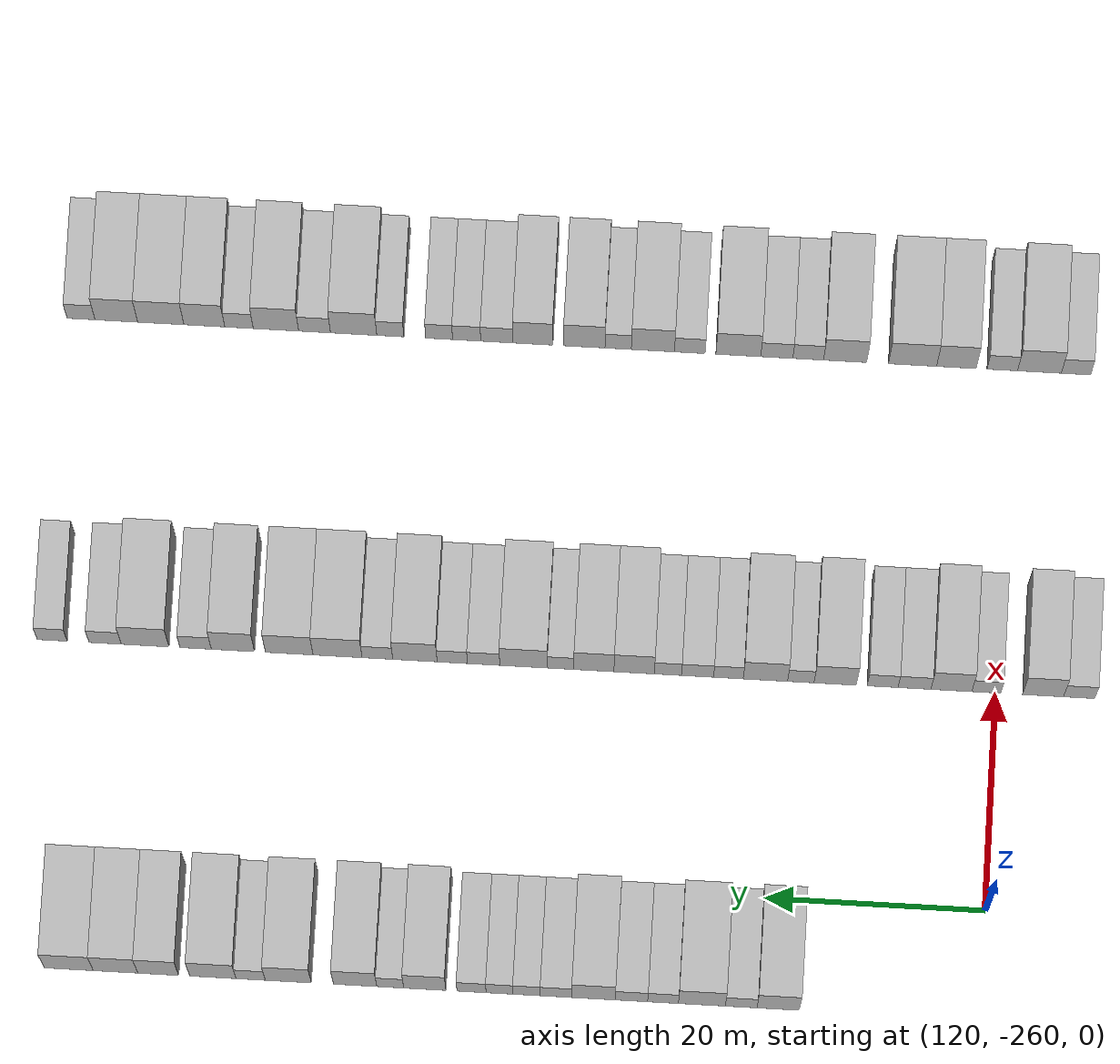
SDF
<sdf version="1.6">
 <world name="default">
  <model name="building_739">
   <static>1</static>
   <pose>115.0000 -241.7540 0 0.000000 0.000000 0.000000</pose>
   <link name="link">
    <pose>0 0 4.50 0 0 0</pose>
    <collision name="collision"><geometry><box><size>10.0000 3.8278 9.0000</size></box></geometry></collision>
    <visual name="visual">
     <cast_shadows>0</cast_shadows>
     <geometry><box><size>10.0000 3.8278 9.0000</size></box></geometry>
     <material>
      <script>
       <uri>model://HANNAS_wall/materials/scripts</uri>
       <uri>model://HANNAS_wall/materials/textures</uri>
       <name>vrc/HANNAS_wall</name>
      </script>
     </material>
    </visual>
   </link>
  </model>
  <model name="building_740">
   <static>1</static>
   <pose>115.0000 -238.4120 0 0.000000 0.000000 0.000000</pose>
   <link name="link">
    <pose>0 0 3.00 0 0 0</pose>
    <collision name="collision"><geometry><box><size>10.0000 2.8562 6.0000</size></box></geometry></collision>
    <visual name="visual">
     <cast_shadows>0</cast_shadows>
     <geometry><box><size>10.0000 2.8562 6.0000</size></box></geometry>
     <material>
      <script>
       <uri>model://HANNAS_wall/materials/scripts</uri>
       <uri>model://HANNAS_wall/materials/textures</uri>
       <name>vrc/HANNAS_wall</name>
      </script>
     </material>
    </visual>
   </link>
  </model>
  <model name="building_741">
   <static>1</static>
   <pose>115.0000 -234.8607 0 0.000000 0.000000 0.000000</pose>
   <link name="link">
    <pose>0 0 4.50 0 0 0</pose>
    <collision name="collision"><geometry><box><size>10.0000 4.2464 9.0000</size></box></geometry></collision>
    <visual name="visual">
     <cast_shadows>0</cast_shadows>
     <geometry><box><size>10.0000 4.2464 9.0000</size></box></geometry>
     <material>
      <script>
       <uri>model://HANNAS_wall/materials/scripts</uri>
       <uri>model://HANNAS_wall/materials/textures</uri>
       <name>vrc/HANNAS_wall</name>
      </script>
     </material>
    </visual>
   </link>
  </model>
  <model name="building_742">
   <static>1</static>
   <pose>115.0000 -231.3489 0 0.000000 0.000000 0.000000</pose>
   <link name="link">
    <pose>0 0 3.00 0 0 0</pose>
    <collision name="collision"><geometry><box><size>10.0000 2.7771 6.0000</size></box></geometry></collision>
    <visual name="visual">
     <cast_shadows>0</cast_shadows>
     <geometry><box><size>10.0000 2.7771 6.0000</size></box></geometry>
     <material>
      <script>
       <uri>model://HANNAS_wall/materials/scripts</uri>
       <uri>model://HANNAS_wall/materials/textures</uri>
       <name>vrc/HANNAS_wall</name>
      </script>
     </material>
    </visual>
   </link>
  </model>
  <model name="building_743">
   <static>1</static>
   <pose>115.0000 -228.4945 0 0.000000 0.000000 0.000000</pose>
   <link name="link">
    <pose>0 0 3.00 0 0 0</pose>
    <collision name="collision"><geometry><box><size>10.0000 2.9319 6.0000</size></box></geometry></collision>
    <visual name="visual">
     <cast_shadows>0</cast_shadows>
     <geometry><box><size>10.0000 2.9319 6.0000</size></box></geometry>
     <material>
      <script>
       <uri>model://HANNAS_wall/materials/scripts</uri>
       <uri>model://HANNAS_wall/materials/textures</uri>
       <name>vrc/HANNAS_wall</name>
      </script>
     </material>
    </visual>
   </link>
  </model>
  <model name="building_744">
   <static>1</static>
   <pose>115.0000 -225.0639 0 0.000000 0.000000 0.000000</pose>
   <link name="link">
    <pose>0 0 4.50 0 0 0</pose>
    <collision name="collision"><geometry><box><size>10.0000 3.9292 9.0000</size></box></geometry></collision>
    <visual name="visual">
     <cast_shadows>0</cast_shadows>
     <geometry><box><size>10.0000 3.9292 9.0000</size></box></geometry>
     <material>
      <script>
       <uri>model://HANNAS_wall/materials/scripts</uri>
       <uri>model://HANNAS_wall/materials/textures</uri>
       <name>vrc/HANNAS_wall</name>
      </script>
     </material>
    </visual>
   </link>
  </model>
  <model name="building_745">
   <static>1</static>
   <pose>115.0000 -221.6738 0 0.000000 0.000000 0.000000</pose>
   <link name="link">
    <pose>0 0 3.00 0 0 0</pose>
    <collision name="collision"><geometry><box><size>10.0000 2.8510 6.0000</size></box></geometry></collision>
    <visual name="visual">
     <cast_shadows>0</cast_shadows>
     <geometry><box><size>10.0000 2.8510 6.0000</size></box></geometry>
     <material>
      <script>
       <uri>model://HANNAS_wall/materials/scripts</uri>
       <uri>model://HANNAS_wall/materials/textures</uri>
       <name>vrc/HANNAS_wall</name>
      </script>
     </material>
    </visual>
   </link>
  </model>
  <model name="building_746">
   <static>1</static>
   <pose>115.0000 -219.0164 0 0.000000 0.000000 0.000000</pose>
   <link name="link">
    <pose>0 0 3.00 0 0 0</pose>
    <collision name="collision"><geometry><box><size>10.0000 2.4638 6.0000</size></box></geometry></collision>
    <visual name="visual">
     <cast_shadows>0</cast_shadows>
     <geometry><box><size>10.0000 2.4638 6.0000</size></box></geometry>
     <material>
      <script>
       <uri>model://HANNAS_wall/materials/scripts</uri>
       <uri>model://HANNAS_wall/materials/textures</uri>
       <name>vrc/HANNAS_wall</name>
      </script>
     </material>
    </visual>
   </link>
  </model>
  <model name="building_747">
   <static>1</static>
   <pose>115.0000 -216.5693 0 0.000000 0.000000 0.000000</pose>
   <link name="link">
    <pose>0 0 3.00 0 0 0</pose>
    <collision name="collision"><geometry><box><size>10.0000 2.4302 6.0000</size></box></geometry></collision>
    <visual name="visual">
     <cast_shadows>0</cast_shadows>
     <geometry><box><size>10.0000 2.4302 6.0000</size></box></geometry>
     <material>
      <script>
       <uri>model://HANNAS_wall/materials/scripts</uri>
       <uri>model://HANNAS_wall/materials/textures</uri>
       <name>vrc/HANNAS_wall</name>
      </script>
     </material>
    </visual>
   </link>
  </model>
  <model name="building_748">
   <static>1</static>
   <pose>115.0000 -214.0359 0 0.000000 0.000000 0.000000</pose>
   <link name="link">
    <pose>0 0 3.00 0 0 0</pose>
    <collision name="collision"><geometry><box><size>10.0000 2.6367 6.0000</size></box></geometry></collision>
    <visual name="visual">
     <cast_shadows>0</cast_shadows>
     <geometry><box><size>10.0000 2.6367 6.0000</size></box></geometry>
     <material>
      <script>
       <uri>model://HANNAS_wall/materials/scripts</uri>
       <uri>model://HANNAS_wall/materials/textures</uri>
       <name>vrc/HANNAS_wall</name>
      </script>
     </material>
    </visual>
   </link>
  </model>
  <model name="building_749">
   <static>1</static>
   <pose>115.0000 -209.8105 0 0.000000 0.000000 0.000000</pose>
   <link name="link">
    <pose>0 0 4.50 0 0 0</pose>
    <collision name="collision"><geometry><box><size>10.0000 3.8141 9.0000</size></box></geometry></collision>
    <visual name="visual">
     <cast_shadows>0</cast_shadows>
     <geometry><box><size>10.0000 3.8141 9.0000</size></box></geometry>
     <material>
      <script>
       <uri>model://HANNAS_wall/materials/scripts</uri>
       <uri>model://HANNAS_wall/materials/textures</uri>
       <name>vrc/HANNAS_wall</name>
      </script>
     </material>
    </visual>
   </link>
  </model>
  <model name="building_750">
   <static>1</static>
   <pose>115.0000 -206.6864 0 0.000000 0.000000 0.000000</pose>
   <link name="link">
    <pose>0 0 3.00 0 0 0</pose>
    <collision name="collision"><geometry><box><size>10.0000 2.4340 6.0000</size></box></geometry></collision>
    <visual name="visual">
     <cast_shadows>0</cast_shadows>
     <geometry><box><size>10.0000 2.4340 6.0000</size></box></geometry>
     <material>
      <script>
       <uri>model://HANNAS_wall/materials/scripts</uri>
       <uri>model://HANNAS_wall/materials/textures</uri>
       <name>vrc/HANNAS_wall</name>
      </script>
     </material>
    </visual>
   </link>
  </model>
  <model name="building_751">
   <static>1</static>
   <pose>115.0000 -203.5033 0 0.000000 0.000000 0.000000</pose>
   <link name="link">
    <pose>0 0 4.50 0 0 0</pose>
    <collision name="collision"><geometry><box><size>10.0000 3.9322 9.0000</size></box></geometry></collision>
    <visual name="visual">
     <cast_shadows>0</cast_shadows>
     <geometry><box><size>10.0000 3.9322 9.0000</size></box></geometry>
     <material>
      <script>
       <uri>model://HANNAS_wall/materials/scripts</uri>
       <uri>model://HANNAS_wall/materials/textures</uri>
       <name>vrc/HANNAS_wall</name>
      </script>
     </material>
    </visual>
   </link>
  </model>
  <model name="building_752">
   <static>1</static>
   <pose>115.0000 -197.4525 0 0.000000 0.000000 0.000000</pose>
   <link name="link">
    <pose>0 0 4.50 0 0 0</pose>
    <collision name="collision"><geometry><box><size>10.0000 4.1695 9.0000</size></box></geometry></collision>
    <visual name="visual">
     <cast_shadows>0</cast_shadows>
     <geometry><box><size>10.0000 4.1695 9.0000</size></box></geometry>
     <material>
      <script>
       <uri>model://HANNAS_wall/materials/scripts</uri>
       <uri>model://HANNAS_wall/materials/textures</uri>
       <name>vrc/HANNAS_wall</name>
      </script>
     </material>
    </visual>
   </link>
  </model>
  <model name="building_753">
   <static>1</static>
   <pose>115.0000 -194.0520 0 0.000000 0.000000 0.000000</pose>
   <link name="link">
    <pose>0 0 3.00 0 0 0</pose>
    <collision name="collision"><geometry><box><size>10.0000 2.6315 6.0000</size></box></geometry></collision>
    <visual name="visual">
     <cast_shadows>0</cast_shadows>
     <geometry><box><size>10.0000 2.6315 6.0000</size></box></geometry>
     <material>
      <script>
       <uri>model://HANNAS_wall/materials/scripts</uri>
       <uri>model://HANNAS_wall/materials/textures</uri>
       <name>vrc/HANNAS_wall</name>
      </script>
     </material>
    </visual>
   </link>
  </model>
  <model name="building_754">
   <static>1</static>
   <pose>115.0000 -190.6372 0 0.000000 0.000000 0.000000</pose>
   <link name="link">
    <pose>0 0 4.50 0 0 0</pose>
    <collision name="collision"><geometry><box><size>10.0000 4.1980 9.0000</size></box></geometry></collision>
    <visual name="visual">
     <cast_shadows>0</cast_shadows>
     <geometry><box><size>10.0000 4.1980 9.0000</size></box></geometry>
     <material>
      <script>
       <uri>model://HANNAS_wall/materials/scripts</uri>
       <uri>model://HANNAS_wall/materials/textures</uri>
       <name>vrc/HANNAS_wall</name>
      </script>
     </material>
    </visual>
   </link>
  </model>
  <model name="building_755">
   <static>1</static>
   <pose>115.0000 -185.6917 0 0.000000 0.000000 0.000000</pose>
   <link name="link">
    <pose>0 0 4.50 0 0 0</pose>
    <collision name="collision"><geometry><box><size>10.0000 3.6931 9.0000</size></box></geometry></collision>
    <visual name="visual">
     <cast_shadows>0</cast_shadows>
     <geometry><box><size>10.0000 3.6931 9.0000</size></box></geometry>
     <material>
      <script>
       <uri>model://HANNAS_wall/materials/scripts</uri>
       <uri>model://HANNAS_wall/materials/textures</uri>
       <name>vrc/HANNAS_wall</name>
      </script>
     </material>
    </visual>
   </link>
  </model>
  <model name="building_756">
   <static>1</static>
   <pose>115.0000 -181.8208 0 0.000000 0.000000 0.000000</pose>
   <link name="link">
    <pose>0 0 4.50 0 0 0</pose>
    <collision name="collision"><geometry><box><size>10.0000 4.0487 9.0000</size></box></geometry></collision>
    <visual name="visual">
     <cast_shadows>0</cast_shadows>
     <geometry><box><size>10.0000 4.0487 9.0000</size></box></geometry>
     <material>
      <script>
       <uri>model://HANNAS_wall/materials/scripts</uri>
       <uri>model://HANNAS_wall/materials/textures</uri>
       <name>vrc/HANNAS_wall</name>
      </script>
     </material>
    </visual>
   </link>
  </model>
  <model name="building_757">
   <static>1</static>
   <pose>115.0000 -177.5855 0 0.000000 0.000000 0.000000</pose>
   <link name="link">
    <pose>0 0 4.50 0 0 0</pose>
    <collision name="collision"><geometry><box><size>10.0000 4.4221 9.0000</size></box></geometry></collision>
    <visual name="visual">
     <cast_shadows>0</cast_shadows>
     <geometry><box><size>10.0000 4.4221 9.0000</size></box></geometry>
     <material>
      <script>
       <uri>model://HANNAS_wall/materials/scripts</uri>
       <uri>model://HANNAS_wall/materials/textures</uri>
       <name>vrc/HANNAS_wall</name>
      </script>
     </material>
    </visual>
   </link>
  </model>
  <model name="building_961">
   <static>1</static>
   <pose>145.0000 -267.6204 0 0.000000 0.000000 0.000000</pose>
   <link name="link">
    <pose>0 0 3.00 0 0 0</pose>
    <collision name="collision"><geometry><box><size>10.0000 2.8431 6.0000</size></box></geometry></collision>
    <visual name="visual">
     <cast_shadows>0</cast_shadows>
     <geometry><box><size>10.0000 2.8431 6.0000</size></box></geometry>
     <material>
      <script>
       <uri>model://HANNAS_wall/materials/scripts</uri>
       <uri>model://HANNAS_wall/materials/textures</uri>
       <name>vrc/HANNAS_wall</name>
      </script>
     </material>
    </visual>
   </link>
  </model>
  <model name="building_962">
   <static>1</static>
   <pose>145.0000 -264.3363 0 0.000000 0.000000 0.000000</pose>
   <link name="link">
    <pose>0 0 4.50 0 0 0</pose>
    <collision name="collision"><geometry><box><size>10.0000 3.7251 9.0000</size></box></geometry></collision>
    <visual name="visual">
     <cast_shadows>0</cast_shadows>
     <geometry><box><size>10.0000 3.7251 9.0000</size></box></geometry>
     <material>
      <script>
       <uri>model://HANNAS_wall/materials/scripts</uri>
       <uri>model://HANNAS_wall/materials/textures</uri>
       <name>vrc/HANNAS_wall</name>
      </script>
     </material>
    </visual>
   </link>
  </model>
  <model name="building_963">
   <static>1</static>
   <pose>145.0000 -259.1594 0 0.000000 0.000000 0.000000</pose>
   <link name="link">
    <pose>0 0 3.00 0 0 0</pose>
    <collision name="collision"><geometry><box><size>10.0000 2.6287 6.0000</size></box></geometry></collision>
    <visual name="visual">
     <cast_shadows>0</cast_shadows>
     <geometry><box><size>10.0000 2.6287 6.0000</size></box></geometry>
     <material>
      <script>
       <uri>model://HANNAS_wall/materials/scripts</uri>
       <uri>model://HANNAS_wall/materials/textures</uri>
       <name>vrc/HANNAS_wall</name>
      </script>
     </material>
    </visual>
   </link>
  </model>
  <model name="building_964">
   <static>1</static>
   <pose>145.0000 -255.9817 0 0.000000 0.000000 0.000000</pose>
   <link name="link">
    <pose>0 0 4.50 0 0 0</pose>
    <collision name="collision"><geometry><box><size>10.0000 3.7265 9.0000</size></box></geometry></collision>
    <visual name="visual">
     <cast_shadows>0</cast_shadows>
     <geometry><box><size>10.0000 3.7265 9.0000</size></box></geometry>
     <material>
      <script>
       <uri>model://HANNAS_wall/materials/scripts</uri>
       <uri>model://HANNAS_wall/materials/textures</uri>
       <name>vrc/HANNAS_wall</name>
      </script>
     </material>
    </visual>
   </link>
  </model>
  <model name="building_965">
   <static>1</static>
   <pose>145.0000 -252.6247 0 0.000000 0.000000 0.000000</pose>
   <link name="link">
    <pose>0 0 3.00 0 0 0</pose>
    <collision name="collision"><geometry><box><size>10.0000 2.9876 6.0000</size></box></geometry></collision>
    <visual name="visual">
     <cast_shadows>0</cast_shadows>
     <geometry><box><size>10.0000 2.9876 6.0000</size></box></geometry>
     <material>
      <script>
       <uri>model://HANNAS_wall/materials/scripts</uri>
       <uri>model://HANNAS_wall/materials/textures</uri>
       <name>vrc/HANNAS_wall</name>
      </script>
     </material>
    </visual>
   </link>
  </model>
  <model name="building_966">
   <static>1</static>
   <pose>145.0000 -249.7247 0 0.000000 0.000000 0.000000</pose>
   <link name="link">
    <pose>0 0 3.00 0 0 0</pose>
    <collision name="collision"><geometry><box><size>10.0000 2.8123 6.0000</size></box></geometry></collision>
    <visual name="visual">
     <cast_shadows>0</cast_shadows>
     <geometry><box><size>10.0000 2.8123 6.0000</size></box></geometry>
     <material>
      <script>
       <uri>model://HANNAS_wall/materials/scripts</uri>
       <uri>model://HANNAS_wall/materials/textures</uri>
       <name>vrc/HANNAS_wall</name>
      </script>
     </material>
    </visual>
   </link>
  </model>
  <model name="building_967">
   <static>1</static>
   <pose>145.0000 -245.3962 0 0.000000 0.000000 0.000000</pose>
   <link name="link">
    <pose>0 0 4.50 0 0 0</pose>
    <collision name="collision"><geometry><box><size>10.0000 3.8448 9.0000</size></box></geometry></collision>
    <visual name="visual">
     <cast_shadows>0</cast_shadows>
     <geometry><box><size>10.0000 3.8448 9.0000</size></box></geometry>
     <material>
      <script>
       <uri>model://HANNAS_wall/materials/scripts</uri>
       <uri>model://HANNAS_wall/materials/textures</uri>
       <name>vrc/HANNAS_wall</name>
      </script>
     </material>
    </visual>
   </link>
  </model>
  <model name="building_968">
   <static>1</static>
   <pose>145.0000 -242.2686 0 0.000000 0.000000 0.000000</pose>
   <link name="link">
    <pose>0 0 3.00 0 0 0</pose>
    <collision name="collision"><geometry><box><size>10.0000 2.4103 6.0000</size></box></geometry></collision>
    <visual name="visual">
     <cast_shadows>0</cast_shadows>
     <geometry><box><size>10.0000 2.4103 6.0000</size></box></geometry>
     <material>
      <script>
       <uri>model://HANNAS_wall/materials/scripts</uri>
       <uri>model://HANNAS_wall/materials/textures</uri>
       <name>vrc/HANNAS_wall</name>
      </script>
     </material>
    </visual>
   </link>
  </model>
  <model name="building_969">
   <static>1</static>
   <pose>145.0000 -239.0417 0 0.000000 0.000000 0.000000</pose>
   <link name="link">
    <pose>0 0 4.50 0 0 0</pose>
    <collision name="collision"><geometry><box><size>10.0000 4.0436 9.0000</size></box></geometry></collision>
    <visual name="visual">
     <cast_shadows>0</cast_shadows>
     <geometry><box><size>10.0000 4.0436 9.0000</size></box></geometry>
     <material>
      <script>
       <uri>model://HANNAS_wall/materials/scripts</uri>
       <uri>model://HANNAS_wall/materials/textures</uri>
       <name>vrc/HANNAS_wall</name>
      </script>
     </material>
    </visual>
   </link>
  </model>
  <model name="building_970">
   <static>1</static>
   <pose>145.0000 -235.6708 0 0.000000 0.000000 0.000000</pose>
   <link name="link">
    <pose>0 0 3.00 0 0 0</pose>
    <collision name="collision"><geometry><box><size>10.0000 2.6982 6.0000</size></box></geometry></collision>
    <visual name="visual">
     <cast_shadows>0</cast_shadows>
     <geometry><box><size>10.0000 2.6982 6.0000</size></box></geometry>
     <material>
      <script>
       <uri>model://HANNAS_wall/materials/scripts</uri>
       <uri>model://HANNAS_wall/materials/textures</uri>
       <name>vrc/HANNAS_wall</name>
      </script>
     </material>
    </visual>
   </link>
  </model>
  <model name="building_971">
   <static>1</static>
   <pose>145.0000 -232.8591 0 0.000000 0.000000 0.000000</pose>
   <link name="link">
    <pose>0 0 3.00 0 0 0</pose>
    <collision name="collision"><geometry><box><size>10.0000 2.9251 6.0000</size></box></geometry></collision>
    <visual name="visual">
     <cast_shadows>0</cast_shadows>
     <geometry><box><size>10.0000 2.9251 6.0000</size></box></geometry>
     <material>
      <script>
       <uri>model://HANNAS_wall/materials/scripts</uri>
       <uri>model://HANNAS_wall/materials/textures</uri>
       <name>vrc/HANNAS_wall</name>
      </script>
     </material>
    </visual>
   </link>
  </model>
  <model name="building_972">
   <static>1</static>
   <pose>145.0000 -230.1601 0 0.000000 0.000000 0.000000</pose>
   <link name="link">
    <pose>0 0 3.00 0 0 0</pose>
    <collision name="collision"><geometry><box><size>10.0000 2.4729 6.0000</size></box></geometry></collision>
    <visual name="visual">
     <cast_shadows>0</cast_shadows>
     <geometry><box><size>10.0000 2.4729 6.0000</size></box></geometry>
     <material>
      <script>
       <uri>model://HANNAS_wall/materials/scripts</uri>
       <uri>model://HANNAS_wall/materials/textures</uri>
       <name>vrc/HANNAS_wall</name>
      </script>
     </material>
    </visual>
   </link>
  </model>
  <model name="building_973">
   <static>1</static>
   <pose>145.0000 -227.0852 0 0.000000 0.000000 0.000000</pose>
   <link name="link">
    <pose>0 0 4.50 0 0 0</pose>
    <collision name="collision"><geometry><box><size>10.0000 3.6770 9.0000</size></box></geometry></collision>
    <visual name="visual">
     <cast_shadows>0</cast_shadows>
     <geometry><box><size>10.0000 3.6770 9.0000</size></box></geometry>
     <material>
      <script>
       <uri>model://HANNAS_wall/materials/scripts</uri>
       <uri>model://HANNAS_wall/materials/textures</uri>
       <name>vrc/HANNAS_wall</name>
      </script>
     </material>
    </visual>
   </link>
  </model>
  <model name="building_974">
   <static>1</static>
   <pose>145.0000 -223.4236 0 0.000000 0.000000 0.000000</pose>
   <link name="link">
    <pose>0 0 4.50 0 0 0</pose>
    <collision name="collision"><geometry><box><size>10.0000 3.6461 9.0000</size></box></geometry></collision>
    <visual name="visual">
     <cast_shadows>0</cast_shadows>
     <geometry><box><size>10.0000 3.6461 9.0000</size></box></geometry>
     <material>
      <script>
       <uri>model://HANNAS_wall/materials/scripts</uri>
       <uri>model://HANNAS_wall/materials/textures</uri>
       <name>vrc/HANNAS_wall</name>
      </script>
     </material>
    </visual>
   </link>
  </model>
  <model name="building_975">
   <static>1</static>
   <pose>145.0000 -220.3983 0 0.000000 0.000000 0.000000</pose>
   <link name="link">
    <pose>0 0 3.00 0 0 0</pose>
    <collision name="collision"><geometry><box><size>10.0000 2.4046 6.0000</size></box></geometry></collision>
    <visual name="visual">
     <cast_shadows>0</cast_shadows>
     <geometry><box><size>10.0000 2.4046 6.0000</size></box></geometry>
     <material>
      <script>
       <uri>model://HANNAS_wall/materials/scripts</uri>
       <uri>model://HANNAS_wall/materials/textures</uri>
       <name>vrc/HANNAS_wall</name>
      </script>
     </material>
    </visual>
   </link>
  </model>
  <model name="building_976">
   <static>1</static>
   <pose>145.0000 -217.0209 0 0.000000 0.000000 0.000000</pose>
   <link name="link">
    <pose>0 0 4.50 0 0 0</pose>
    <collision name="collision"><geometry><box><size>10.0000 4.3501 9.0000</size></box></geometry></collision>
    <visual name="visual">
     <cast_shadows>0</cast_shadows>
     <geometry><box><size>10.0000 4.3501 9.0000</size></box></geometry>
     <material>
      <script>
       <uri>model://HANNAS_wall/materials/scripts</uri>
       <uri>model://HANNAS_wall/materials/textures</uri>
       <name>vrc/HANNAS_wall</name>
      </script>
     </material>
    </visual>
   </link>
  </model>
  <model name="building_977">
   <static>1</static>
   <pose>145.0000 -213.3686 0 0.000000 0.000000 0.000000</pose>
   <link name="link">
    <pose>0 0 3.00 0 0 0</pose>
    <collision name="collision"><geometry><box><size>10.0000 2.9546 6.0000</size></box></geometry></collision>
    <visual name="visual">
     <cast_shadows>0</cast_shadows>
     <geometry><box><size>10.0000 2.9546 6.0000</size></box></geometry>
     <material>
      <script>
       <uri>model://HANNAS_wall/materials/scripts</uri>
       <uri>model://HANNAS_wall/materials/textures</uri>
       <name>vrc/HANNAS_wall</name>
      </script>
     </material>
    </visual>
   </link>
  </model>
  <model name="building_978">
   <static>1</static>
   <pose>145.0000 -210.5132 0 0.000000 0.000000 0.000000</pose>
   <link name="link">
    <pose>0 0 3.00 0 0 0</pose>
    <collision name="collision"><geometry><box><size>10.0000 2.7561 6.0000</size></box></geometry></collision>
    <visual name="visual">
     <cast_shadows>0</cast_shadows>
     <geometry><box><size>10.0000 2.7561 6.0000</size></box></geometry>
     <material>
      <script>
       <uri>model://HANNAS_wall/materials/scripts</uri>
       <uri>model://HANNAS_wall/materials/textures</uri>
       <name>vrc/HANNAS_wall</name>
      </script>
     </material>
    </visual>
   </link>
  </model>
  <model name="building_979">
   <static>1</static>
   <pose>145.0000 -207.1125 0 0.000000 0.000000 0.000000</pose>
   <link name="link">
    <pose>0 0 4.50 0 0 0</pose>
    <collision name="collision"><geometry><box><size>10.0000 4.0452 9.0000</size></box></geometry></collision>
    <visual name="visual">
     <cast_shadows>0</cast_shadows>
     <geometry><box><size>10.0000 4.0452 9.0000</size></box></geometry>
     <material>
      <script>
       <uri>model://HANNAS_wall/materials/scripts</uri>
       <uri>model://HANNAS_wall/materials/textures</uri>
       <name>vrc/HANNAS_wall</name>
      </script>
     </material>
    </visual>
   </link>
  </model>
  <model name="building_980">
   <static>1</static>
   <pose>145.0000 -203.6898 0 0.000000 0.000000 0.000000</pose>
   <link name="link">
    <pose>0 0 3.00 0 0 0</pose>
    <collision name="collision"><geometry><box><size>10.0000 2.8002 6.0000</size></box></geometry></collision>
    <visual name="visual">
     <cast_shadows>0</cast_shadows>
     <geometry><box><size>10.0000 2.8002 6.0000</size></box></geometry>
     <material>
      <script>
       <uri>model://HANNAS_wall/materials/scripts</uri>
       <uri>model://HANNAS_wall/materials/textures</uri>
       <name>vrc/HANNAS_wall</name>
      </script>
     </material>
    </visual>
   </link>
  </model>
  <model name="building_981">
   <static>1</static>
   <pose>145.0000 -200.0513 0 0.000000 0.000000 0.000000</pose>
   <link name="link">
    <pose>0 0 4.50 0 0 0</pose>
    <collision name="collision"><geometry><box><size>10.0000 4.4768 9.0000</size></box></geometry></collision>
    <visual name="visual">
     <cast_shadows>0</cast_shadows>
     <geometry><box><size>10.0000 4.4768 9.0000</size></box></geometry>
     <material>
      <script>
       <uri>model://HANNAS_wall/materials/scripts</uri>
       <uri>model://HANNAS_wall/materials/textures</uri>
       <name>vrc/HANNAS_wall</name>
      </script>
     </material>
    </visual>
   </link>
  </model>
  <model name="building_982">
   <static>1</static>
   <pose>145.0000 -195.6491 0 0.000000 0.000000 0.000000</pose>
   <link name="link">
    <pose>0 0 4.50 0 0 0</pose>
    <collision name="collision"><geometry><box><size>10.0000 4.3276 9.0000</size></box></geometry></collision>
    <visual name="visual">
     <cast_shadows>0</cast_shadows>
     <geometry><box><size>10.0000 4.3276 9.0000</size></box></geometry>
     <material>
      <script>
       <uri>model://HANNAS_wall/materials/scripts</uri>
       <uri>model://HANNAS_wall/materials/textures</uri>
       <name>vrc/HANNAS_wall</name>
      </script>
     </material>
    </visual>
   </link>
  </model>
  <model name="building_983">
   <static>1</static>
   <pose>145.0000 -190.5149 0 0.000000 0.000000 0.000000</pose>
   <link name="link">
    <pose>0 0 4.50 0 0 0</pose>
    <collision name="collision"><geometry><box><size>10.0000 3.9408 9.0000</size></box></geometry></collision>
    <visual name="visual">
     <cast_shadows>0</cast_shadows>
     <geometry><box><size>10.0000 3.9408 9.0000</size></box></geometry>
     <material>
      <script>
       <uri>model://HANNAS_wall/materials/scripts</uri>
       <uri>model://HANNAS_wall/materials/textures</uri>
       <name>vrc/HANNAS_wall</name>
      </script>
     </material>
    </visual>
   </link>
  </model>
  <model name="building_984">
   <static>1</static>
   <pose>145.0000 -187.1136 0 0.000000 0.000000 0.000000</pose>
   <link name="link">
    <pose>0 0 3.00 0 0 0</pose>
    <collision name="collision"><geometry><box><size>10.0000 2.8619 6.0000</size></box></geometry></collision>
    <visual name="visual">
     <cast_shadows>0</cast_shadows>
     <geometry><box><size>10.0000 2.8619 6.0000</size></box></geometry>
     <material>
      <script>
       <uri>model://HANNAS_wall/materials/scripts</uri>
       <uri>model://HANNAS_wall/materials/textures</uri>
       <name>vrc/HANNAS_wall</name>
      </script>
     </material>
    </visual>
   </link>
  </model>
  <model name="building_985">
   <static>1</static>
   <pose>145.0000 -182.5001 0 0.000000 0.000000 0.000000</pose>
   <link name="link">
    <pose>0 0 4.50 0 0 0</pose>
    <collision name="collision"><geometry><box><size>10.0000 4.3652 9.0000</size></box></geometry></collision>
    <visual name="visual">
     <cast_shadows>0</cast_shadows>
     <geometry><box><size>10.0000 4.3652 9.0000</size></box></geometry>
     <material>
      <script>
       <uri>model://HANNAS_wall/materials/scripts</uri>
       <uri>model://HANNAS_wall/materials/textures</uri>
       <name>vrc/HANNAS_wall</name>
      </script>
     </material>
    </visual>
   </link>
  </model>
  <model name="building_986">
   <static>1</static>
   <pose>145.0000 -178.8533 0 0.000000 0.000000 0.000000</pose>
   <link name="link">
    <pose>0 0 3.00 0 0 0</pose>
    <collision name="collision"><geometry><box><size>10.0000 2.9283 6.0000</size></box></geometry></collision>
    <visual name="visual">
     <cast_shadows>0</cast_shadows>
     <geometry><box><size>10.0000 2.9283 6.0000</size></box></geometry>
     <material>
      <script>
       <uri>model://HANNAS_wall/materials/scripts</uri>
       <uri>model://HANNAS_wall/materials/textures</uri>
       <name>vrc/HANNAS_wall</name>
      </script>
     </material>
    </visual>
   </link>
  </model>
  <model name="building_987">
   <static>1</static>
   <pose>145.0000 -174.0263 0 0.000000 0.000000 0.000000</pose>
   <link name="link">
    <pose>0 0 3.00 0 0 0</pose>
    <collision name="collision"><geometry><box><size>10.0000 2.7259 6.0000</size></box></geometry></collision>
    <visual name="visual">
     <cast_shadows>0</cast_shadows>
     <geometry><box><size>10.0000 2.7259 6.0000</size></box></geometry>
     <material>
      <script>
       <uri>model://HANNAS_wall/materials/scripts</uri>
       <uri>model://HANNAS_wall/materials/textures</uri>
       <name>vrc/HANNAS_wall</name>
      </script>
     </material>
    </visual>
   </link>
  </model>
  <model name="building_1187">
   <static>1</static>
   <pose>175.0000 -265.9891 0 0.000000 0.000000 0.000000</pose>
   <link name="link">
    <pose>0 0 3.00 0 0 0</pose>
    <collision name="collision"><geometry><box><size>10.0000 2.6900 6.0000</size></box></geometry></collision>
    <visual name="visual">
     <cast_shadows>0</cast_shadows>
     <geometry><box><size>10.0000 2.6900 6.0000</size></box></geometry>
     <material>
      <script>
       <uri>model://HANNAS_wall/materials/scripts</uri>
       <uri>model://HANNAS_wall/materials/textures</uri>
       <name>vrc/HANNAS_wall</name>
      </script>
     </material>
    </visual>
   </link>
  </model>
  <model name="building_1188">
   <static>1</static>
   <pose>175.0000 -262.6372 0 0.000000 0.000000 0.000000</pose>
   <link name="link">
    <pose>0 0 4.50 0 0 0</pose>
    <collision name="collision"><geometry><box><size>10.0000 4.0137 9.0000</size></box></geometry></collision>
    <visual name="visual">
     <cast_shadows>0</cast_shadows>
     <geometry><box><size>10.0000 4.0137 9.0000</size></box></geometry>
     <material>
      <script>
       <uri>model://HANNAS_wall/materials/scripts</uri>
       <uri>model://HANNAS_wall/materials/textures</uri>
       <name>vrc/HANNAS_wall</name>
      </script>
     </material>
    </visual>
   </link>
  </model>
  <model name="building_1189">
   <static>1</static>
   <pose>175.0000 -259.2299 0 0.000000 0.000000 0.000000</pose>
   <link name="link">
    <pose>0 0 3.00 0 0 0</pose>
    <collision name="collision"><geometry><box><size>10.0000 2.8008 6.0000</size></box></geometry></collision>
    <visual name="visual">
     <cast_shadows>0</cast_shadows>
     <geometry><box><size>10.0000 2.8008 6.0000</size></box></geometry>
     <material>
      <script>
       <uri>model://HANNAS_wall/materials/scripts</uri>
       <uri>model://HANNAS_wall/materials/textures</uri>
       <name>vrc/HANNAS_wall</name>
      </script>
     </material>
    </visual>
   </link>
  </model>
  <model name="building_1190">
   <static>1</static>
   <pose>175.0000 -255.0163 0 0.000000 0.000000 0.000000</pose>
   <link name="link">
    <pose>0 0 4.50 0 0 0</pose>
    <collision name="collision"><geometry><box><size>10.0000 3.6264 9.0000</size></box></geometry></collision>
    <visual name="visual">
     <cast_shadows>0</cast_shadows>
     <geometry><box><size>10.0000 3.6264 9.0000</size></box></geometry>
     <material>
      <script>
       <uri>model://HANNAS_wall/materials/scripts</uri>
       <uri>model://HANNAS_wall/materials/textures</uri>
       <name>vrc/HANNAS_wall</name>
      </script>
     </material>
    </visual>
   </link>
  </model>
  <model name="building_1191">
   <static>1</static>
   <pose>175.0000 -250.9928 0 0.000000 0.000000 0.000000</pose>
   <link name="link">
    <pose>0 0 4.50 0 0 0</pose>
    <collision name="collision"><geometry><box><size>10.0000 4.4206 9.0000</size></box></geometry></collision>
    <visual name="visual">
     <cast_shadows>0</cast_shadows>
     <geometry><box><size>10.0000 4.4206 9.0000</size></box></geometry>
     <material>
      <script>
       <uri>model://HANNAS_wall/materials/scripts</uri>
       <uri>model://HANNAS_wall/materials/textures</uri>
       <name>vrc/HANNAS_wall</name>
      </script>
     </material>
    </visual>
   </link>
  </model>
  <model name="building_1192">
   <static>1</static>
   <pose>175.0000 -244.8039 0 0.000000 0.000000 0.000000</pose>
   <link name="link">
    <pose>0 0 4.50 0 0 0</pose>
    <collision name="collision"><geometry><box><size>10.0000 3.9574 9.0000</size></box></geometry></collision>
    <visual name="visual">
     <cast_shadows>0</cast_shadows>
     <geometry><box><size>10.0000 3.9574 9.0000</size></box></geometry>
     <material>
      <script>
       <uri>model://HANNAS_wall/materials/scripts</uri>
       <uri>model://HANNAS_wall/materials/textures</uri>
       <name>vrc/HANNAS_wall</name>
      </script>
     </material>
    </visual>
   </link>
  </model>
  <model name="building_1193">
   <static>1</static>
   <pose>175.0000 -241.4179 0 0.000000 0.000000 0.000000</pose>
   <link name="link">
    <pose>0 0 3.00 0 0 0</pose>
    <collision name="collision"><geometry><box><size>10.0000 2.8146 6.0000</size></box></geometry></collision>
    <visual name="visual">
     <cast_shadows>0</cast_shadows>
     <geometry><box><size>10.0000 2.8146 6.0000</size></box></geometry>
     <material>
      <script>
       <uri>model://HANNAS_wall/materials/scripts</uri>
       <uri>model://HANNAS_wall/materials/textures</uri>
       <name>vrc/HANNAS_wall</name>
      </script>
     </material>
    </visual>
   </link>
  </model>
  <model name="building_1194">
   <static>1</static>
   <pose>175.0000 -238.5339 0 0.000000 0.000000 0.000000</pose>
   <link name="link">
    <pose>0 0 3.00 0 0 0</pose>
    <collision name="collision"><geometry><box><size>10.0000 2.9535 6.0000</size></box></geometry></collision>
    <visual name="visual">
     <cast_shadows>0</cast_shadows>
     <geometry><box><size>10.0000 2.9535 6.0000</size></box></geometry>
     <material>
      <script>
       <uri>model://HANNAS_wall/materials/scripts</uri>
       <uri>model://HANNAS_wall/materials/textures</uri>
       <name>vrc/HANNAS_wall</name>
      </script>
     </material>
    </visual>
   </link>
  </model>
  <model name="building_1195">
   <static>1</static>
   <pose>175.0000 -235.0005 0 0.000000 0.000000 0.000000</pose>
   <link name="link">
    <pose>0 0 4.50 0 0 0</pose>
    <collision name="collision"><geometry><box><size>10.0000 4.1133 9.0000</size></box></geometry></collision>
    <visual name="visual">
     <cast_shadows>0</cast_shadows>
     <geometry><box><size>10.0000 4.1133 9.0000</size></box></geometry>
     <material>
      <script>
       <uri>model://HANNAS_wall/materials/scripts</uri>
       <uri>model://HANNAS_wall/materials/textures</uri>
       <name>vrc/HANNAS_wall</name>
      </script>
     </material>
    </visual>
   </link>
  </model>
  <model name="building_1196">
   <static>1</static>
   <pose>175.0000 -230.5387 0 0.000000 0.000000 0.000000</pose>
   <link name="link">
    <pose>0 0 3.00 0 0 0</pose>
    <collision name="collision"><geometry><box><size>10.0000 2.8103 6.0000</size></box></geometry></collision>
    <visual name="visual">
     <cast_shadows>0</cast_shadows>
     <geometry><box><size>10.0000 2.8103 6.0000</size></box></geometry>
     <material>
      <script>
       <uri>model://HANNAS_wall/materials/scripts</uri>
       <uri>model://HANNAS_wall/materials/textures</uri>
       <name>vrc/HANNAS_wall</name>
      </script>
     </material>
    </visual>
   </link>
  </model>
  <model name="building_1197">
   <static>1</static>
   <pose>175.0000 -227.1557 0 0.000000 0.000000 0.000000</pose>
   <link name="link">
    <pose>0 0 4.50 0 0 0</pose>
    <collision name="collision"><geometry><box><size>10.0000 3.9557 9.0000</size></box></geometry></collision>
    <visual name="visual">
     <cast_shadows>0</cast_shadows>
     <geometry><box><size>10.0000 3.9557 9.0000</size></box></geometry>
     <material>
      <script>
       <uri>model://HANNAS_wall/materials/scripts</uri>
       <uri>model://HANNAS_wall/materials/textures</uri>
       <name>vrc/HANNAS_wall</name>
      </script>
     </material>
    </visual>
   </link>
  </model>
  <model name="building_1198">
   <static>1</static>
   <pose>175.0000 -223.9694 0 0.000000 0.000000 0.000000</pose>
   <link name="link">
    <pose>0 0 3.00 0 0 0</pose>
    <collision name="collision"><geometry><box><size>10.0000 2.4170 6.0000</size></box></geometry></collision>
    <visual name="visual">
     <cast_shadows>0</cast_shadows>
     <geometry><box><size>10.0000 2.4170 6.0000</size></box></geometry>
     <material>
      <script>
       <uri>model://HANNAS_wall/materials/scripts</uri>
       <uri>model://HANNAS_wall/materials/textures</uri>
       <name>vrc/HANNAS_wall</name>
      </script>
     </material>
    </visual>
   </link>
  </model>
  <model name="building_1199">
   <static>1</static>
   <pose>175.0000 -220.8676 0 0.000000 0.000000 0.000000</pose>
   <link name="link">
    <pose>0 0 4.50 0 0 0</pose>
    <collision name="collision"><geometry><box><size>10.0000 3.7866 9.0000</size></box></geometry></collision>
    <visual name="visual">
     <cast_shadows>0</cast_shadows>
     <geometry><box><size>10.0000 3.7866 9.0000</size></box></geometry>
     <material>
      <script>
       <uri>model://HANNAS_wall/materials/scripts</uri>
       <uri>model://HANNAS_wall/materials/textures</uri>
       <name>vrc/HANNAS_wall</name>
      </script>
     </material>
    </visual>
   </link>
  </model>
  <model name="building_1200">
   <static>1</static>
   <pose>175.0000 -216.1431 0 0.000000 0.000000 0.000000</pose>
   <link name="link">
    <pose>0 0 4.50 0 0 0</pose>
    <collision name="collision"><geometry><box><size>10.0000 3.6624 9.0000</size></box></geometry></collision>
    <visual name="visual">
     <cast_shadows>0</cast_shadows>
     <geometry><box><size>10.0000 3.6624 9.0000</size></box></geometry>
     <material>
      <script>
       <uri>model://HANNAS_wall/materials/scripts</uri>
       <uri>model://HANNAS_wall/materials/textures</uri>
       <name>vrc/HANNAS_wall</name>
      </script>
     </material>
    </visual>
   </link>
  </model>
  <model name="building_1201">
   <static>1</static>
   <pose>175.0000 -212.8304 0 0.000000 0.000000 0.000000</pose>
   <link name="link">
    <pose>0 0 3.00 0 0 0</pose>
    <collision name="collision"><geometry><box><size>10.0000 2.9629 6.0000</size></box></geometry></collision>
    <visual name="visual">
     <cast_shadows>0</cast_shadows>
     <geometry><box><size>10.0000 2.9629 6.0000</size></box></geometry>
     <material>
      <script>
       <uri>model://HANNAS_wall/materials/scripts</uri>
       <uri>model://HANNAS_wall/materials/textures</uri>
       <name>vrc/HANNAS_wall</name>
      </script>
     </material>
    </visual>
   </link>
  </model>
  <model name="building_1202">
   <static>1</static>
   <pose>175.0000 -210.0578 0 0.000000 0.000000 0.000000</pose>
   <link name="link">
    <pose>0 0 3.00 0 0 0</pose>
    <collision name="collision"><geometry><box><size>10.0000 2.5823 6.0000</size></box></geometry></collision>
    <visual name="visual">
     <cast_shadows>0</cast_shadows>
     <geometry><box><size>10.0000 2.5823 6.0000</size></box></geometry>
     <material>
      <script>
       <uri>model://HANNAS_wall/materials/scripts</uri>
       <uri>model://HANNAS_wall/materials/textures</uri>
       <name>vrc/HANNAS_wall</name>
      </script>
     </material>
    </visual>
   </link>
  </model>
  <model name="building_1203">
   <static>1</static>
   <pose>175.0000 -207.5327 0 0.000000 0.000000 0.000000</pose>
   <link name="link">
    <pose>0 0 3.00 0 0 0</pose>
    <collision name="collision"><geometry><box><size>10.0000 2.4680 6.0000</size></box></geometry></collision>
    <visual name="visual">
     <cast_shadows>0</cast_shadows>
     <geometry><box><size>10.0000 2.4680 6.0000</size></box></geometry>
     <material>
      <script>
       <uri>model://HANNAS_wall/materials/scripts</uri>
       <uri>model://HANNAS_wall/materials/textures</uri>
       <name>vrc/HANNAS_wall</name>
      </script>
     </material>
    </visual>
   </link>
  </model>
  <model name="building_1204">
   <static>1</static>
   <pose>175.0000 -203.0514 0 0.000000 0.000000 0.000000</pose>
   <link name="link">
    <pose>0 0 3.00 0 0 0</pose>
    <collision name="collision"><geometry><box><size>10.0000 2.4946 6.0000</size></box></geometry></collision>
    <visual name="visual">
     <cast_shadows>0</cast_shadows>
     <geometry><box><size>10.0000 2.4946 6.0000</size></box></geometry>
     <material>
      <script>
       <uri>model://HANNAS_wall/materials/scripts</uri>
       <uri>model://HANNAS_wall/materials/textures</uri>
       <name>vrc/HANNAS_wall</name>
      </script>
     </material>
    </visual>
   </link>
  </model>
  <model name="building_1205">
   <static>1</static>
   <pose>175.0000 -199.6750 0 0.000000 0.000000 0.000000</pose>
   <link name="link">
    <pose>0 0 4.50 0 0 0</pose>
    <collision name="collision"><geometry><box><size>10.0000 4.2581 9.0000</size></box></geometry></collision>
    <visual name="visual">
     <cast_shadows>0</cast_shadows>
     <geometry><box><size>10.0000 4.2581 9.0000</size></box></geometry>
     <material>
      <script>
       <uri>model://HANNAS_wall/materials/scripts</uri>
       <uri>model://HANNAS_wall/materials/textures</uri>
       <name>vrc/HANNAS_wall</name>
      </script>
     </material>
    </visual>
   </link>
  </model>
  <model name="building_1206">
   <static>1</static>
   <pose>175.0000 -196.0839 0 0.000000 0.000000 0.000000</pose>
   <link name="link">
    <pose>0 0 3.00 0 0 0</pose>
    <collision name="collision"><geometry><box><size>10.0000 2.9243 6.0000</size></box></geometry></collision>
    <visual name="visual">
     <cast_shadows>0</cast_shadows>
     <geometry><box><size>10.0000 2.9243 6.0000</size></box></geometry>
     <material>
      <script>
       <uri>model://HANNAS_wall/materials/scripts</uri>
       <uri>model://HANNAS_wall/materials/textures</uri>
       <name>vrc/HANNAS_wall</name>
      </script>
     </material>
    </visual>
   </link>
  </model>
  <model name="building_1207">
   <static>1</static>
   <pose>175.0000 -192.5355 0 0.000000 0.000000 0.000000</pose>
   <link name="link">
    <pose>0 0 4.50 0 0 0</pose>
    <collision name="collision"><geometry><box><size>10.0000 4.1724 9.0000</size></box></geometry></collision>
    <visual name="visual">
     <cast_shadows>0</cast_shadows>
     <geometry><box><size>10.0000 4.1724 9.0000</size></box></geometry>
     <material>
      <script>
       <uri>model://HANNAS_wall/materials/scripts</uri>
       <uri>model://HANNAS_wall/materials/textures</uri>
       <name>vrc/HANNAS_wall</name>
      </script>
     </material>
    </visual>
   </link>
  </model>
  <model name="building_1208">
   <static>1</static>
   <pose>175.0000 -189.1409 0 0.000000 0.000000 0.000000</pose>
   <link name="link">
    <pose>0 0 3.00 0 0 0</pose>
    <collision name="collision"><geometry><box><size>10.0000 2.6167 6.0000</size></box></geometry></collision>
    <visual name="visual">
     <cast_shadows>0</cast_shadows>
     <geometry><box><size>10.0000 2.6167 6.0000</size></box></geometry>
     <material>
      <script>
       <uri>model://HANNAS_wall/materials/scripts</uri>
       <uri>model://HANNAS_wall/materials/textures</uri>
       <name>vrc/HANNAS_wall</name>
      </script>
     </material>
    </visual>
   </link>
  </model>
  <model name="building_1209">
   <static>1</static>
   <pose>175.0000 -185.9573 0 0.000000 0.000000 0.000000</pose>
   <link name="link">
    <pose>0 0 4.50 0 0 0</pose>
    <collision name="collision"><geometry><box><size>10.0000 3.7506 9.0000</size></box></geometry></collision>
    <visual name="visual">
     <cast_shadows>0</cast_shadows>
     <geometry><box><size>10.0000 3.7506 9.0000</size></box></geometry>
     <material>
      <script>
       <uri>model://HANNAS_wall/materials/scripts</uri>
       <uri>model://HANNAS_wall/materials/textures</uri>
       <name>vrc/HANNAS_wall</name>
      </script>
     </material>
    </visual>
   </link>
  </model>
  <model name="building_1210">
   <static>1</static>
   <pose>175.0000 -181.9537 0 0.000000 0.000000 0.000000</pose>
   <link name="link">
    <pose>0 0 4.50 0 0 0</pose>
    <collision name="collision"><geometry><box><size>10.0000 4.2567 9.0000</size></box></geometry></collision>
    <visual name="visual">
     <cast_shadows>0</cast_shadows>
     <geometry><box><size>10.0000 4.2567 9.0000</size></box></geometry>
     <material>
      <script>
       <uri>model://HANNAS_wall/materials/scripts</uri>
       <uri>model://HANNAS_wall/materials/textures</uri>
       <name>vrc/HANNAS_wall</name>
      </script>
     </material>
    </visual>
   </link>
  </model>
  <model name="building_1211">
   <static>1</static>
   <pose>175.0000 -177.8656 0 0.000000 0.000000 0.000000</pose>
   <link name="link">
    <pose>0 0 4.50 0 0 0</pose>
    <collision name="collision"><geometry><box><size>10.0000 3.9194 9.0000</size></box></geometry></collision>
    <visual name="visual">
     <cast_shadows>0</cast_shadows>
     <geometry><box><size>10.0000 3.9194 9.0000</size></box></geometry>
     <material>
      <script>
       <uri>model://HANNAS_wall/materials/scripts</uri>
       <uri>model://HANNAS_wall/materials/textures</uri>
       <name>vrc/HANNAS_wall</name>
      </script>
     </material>
    </visual>
   </link>
  </model>
  <model name="building_1212">
   <static>1</static>
   <pose>175.0000 -174.6216 0 0.000000 0.000000 0.000000</pose>
   <link name="link">
    <pose>0 0 3.00 0 0 0</pose>
    <collision name="collision"><geometry><box><size>10.0000 2.5687 6.0000</size></box></geometry></collision>
    <visual name="visual">
     <cast_shadows>0</cast_shadows>
     <geometry><box><size>10.0000 2.5687 6.0000</size></box></geometry>
     <material>
      <script>
       <uri>model://HANNAS_wall/materials/scripts</uri>
       <uri>model://HANNAS_wall/materials/textures</uri>
       <name>vrc/HANNAS_wall</name>
      </script>
     </material>
    </visual>
   </link>
  </model>
 </world>
</sdf>
